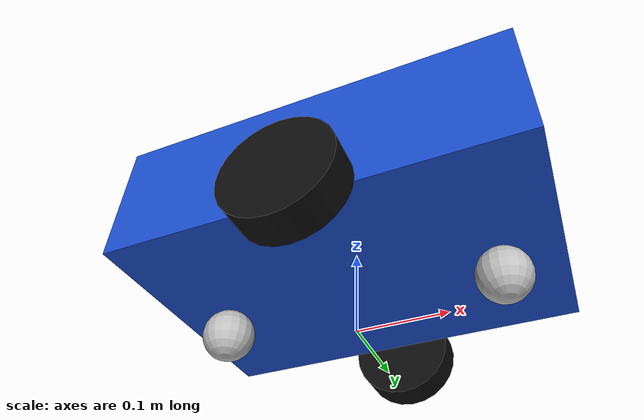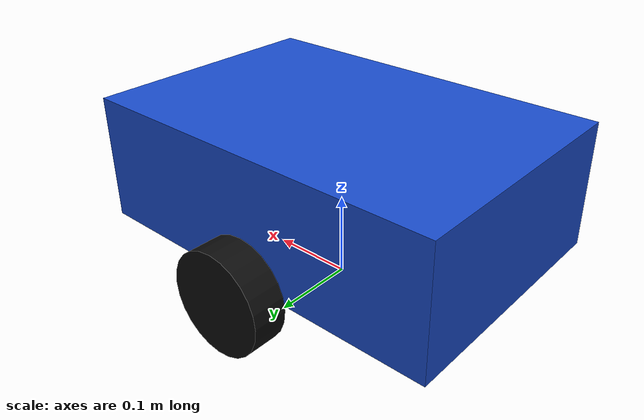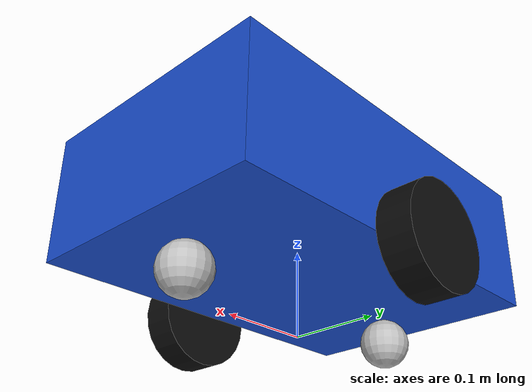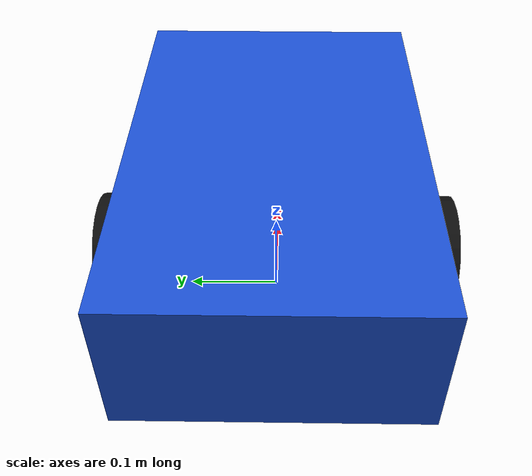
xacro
<?xml version="1.0"?>
<robot xmlns:xacro="http://www.ros.org/wiki/xacro">

  <!-- Materials -->
  <material name="blue">
    <color rgba="0.1 0.3 0.8 1.0"/>
  </material>
  <material name="dark_grey">
    <color rgba="0.2 0.2 0.2 1.0"/>
  </material>
  <material name="black">
    <color rgba="0.05 0.05 0.05 1.0"/>
  </material>
  <material name="red">
    <color rgba="0.8 0.1 0.1 1.0"/>
  </material>
  <material name="silver">
    <color rgba="0.75 0.75 0.75 1.0"/>
  </material>

  <!-- Base Footprint -->
  <link name="base_footprint"/>

  <joint name="base_footprint_joint" type="fixed">
    <parent link="base_footprint"/>
    <child link="base_link"/>
    <origin xyz="0 0 0.06" rpy="0 0 0"/>
  </joint>

  <!-- Base Link -->
  <link name="base_link">
    <visual>
      <origin xyz="0 0 0.075" rpy="0 0 0"/>
      <geometry>
        <box size="0.45 0.30 0.15"/>
      </geometry>
      <material name="blue"/>
    </visual>
    <collision>
      <origin xyz="0 0 0.075" rpy="0 0 0"/>
      <geometry>
        <box size="0.45 0.30 0.15"/>
      </geometry>
    </collision>
    <inertial>
      <origin xyz="0 0 0.075" rpy="0 0 0"/>
      <mass value="5.0"/>
      <inertia ixx="0.0468" ixy="0.0" ixz="0.0" iyy="0.0937" iyz="0.0" izz="0.1218"/>
    </inertial>
  </link>

  <!-- Left Wheel -->
  <link name="left_wheel_link">
    <visual>
      <geometry>
        <cylinder length="0.04" radius="0.06"/>
      </geometry>
      <material name="black"/>
    </visual>
    <collision>
      <geometry>
        <cylinder length="0.04" radius="0.06"/>
      </geometry>
    </collision>
    <inertial>
      <mass value="0.5"/>
      <inertia ixx="0.000516" ixy="0" ixz="0" iyy="0.000516" iyz="0" izz="0.0009"/>
    </inertial>
  </link>

  <joint name="left_wheel_joint" type="continuous">
    <parent link="base_link"/>
    <child link="left_wheel_link"/>
    <origin xyz="0 0.175 0" rpy="-1.57079 0 0"/>
    <axis xyz="0 0 1"/>
  </joint>

  <!-- Right Wheel -->
  <link name="right_wheel_link">
    <visual>
      <geometry>
        <cylinder length="0.04" radius="0.06"/>
      </geometry>
      <material name="black"/>
    </visual>
    <collision>
      <geometry>
        <cylinder length="0.04" radius="0.06"/>
      </geometry>
    </collision>
    <inertial>
      <mass value="0.5"/>
      <inertia ixx="0.000516" ixy="0" ixz="0" iyy="0.000516" iyz="0" izz="0.0009"/>
    </inertial>
  </link>

  <joint name="right_wheel_joint" type="continuous">
    <parent link="base_link"/>
    <child link="right_wheel_link"/>
    <origin xyz="0 -0.175 0" rpy="-1.57079 0 0"/>
    <axis xyz="0 0 1"/>
  </joint>

  <!-- Front Caster Wheel -->
  <link name="front_caster_link">
    <visual>
      <geometry>
        <sphere radius="0.03"/>
      </geometry>
      <material name="silver"/>
    </visual>
    <collision>
      <geometry>
        <sphere radius="0.03"/>
      </geometry>
    </collision>
    <inertial>
      <mass value="0.2"/>
      <inertia ixx="0.000072" ixy="0" ixz="0" iyy="0.000072" iyz="0" izz="0.000072"/>
    </inertial>
  </link>

  <joint name="front_caster_joint" type="fixed">
    <parent link="base_link"/>
    <child link="front_caster_link"/>
    <origin xyz="0.16 0 -0.03" rpy="0 0 0"/>
  </joint>

  <!-- Rear Caster Wheel -->
  <link name="rear_caster_link">
    <visual>
      <geometry>
        <sphere radius="0.03"/>
      </geometry>
      <material name="silver"/>
    </visual>
    <collision>
      <geometry>
        <sphere radius="0.03"/>
      </geometry>
    </collision>
    <inertial>
      <mass value="0.2"/>
      <inertia ixx="0.000072" ixy="0" ixz="0" iyy="0.000072" iyz="0" izz="0.000072"/>
    </inertial>
  </link>

  <joint name="rear_caster_joint" type="fixed">
    <parent link="base_link"/>
    <child link="rear_caster_link"/>
    <origin xyz="-0.16 0 -0.03" rpy="0 0 0"/>
  </joint>

  <gazebo reference="front_caster_link">
    <mu1>0.001</mu1>
    <mu2>0.001</mu2>
  </gazebo>
  <gazebo reference="rear_caster_link">
    <mu1>0.001</mu1>
    <mu2>0.001</mu2>
  </gazebo>

</robot>
